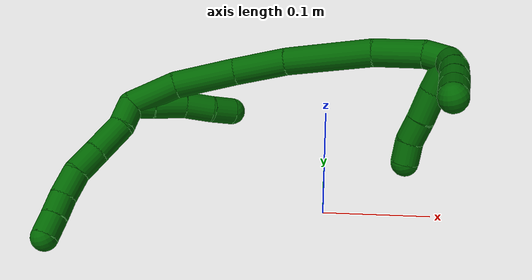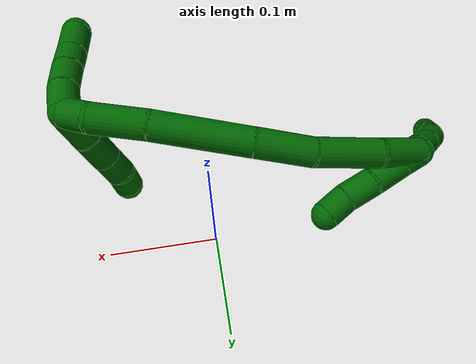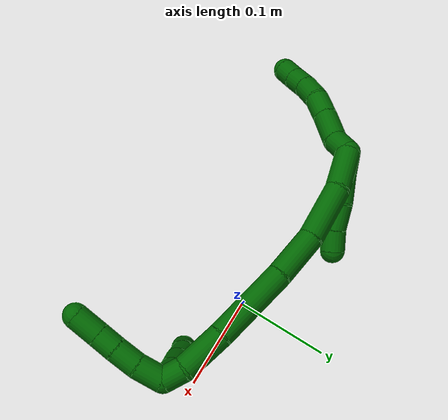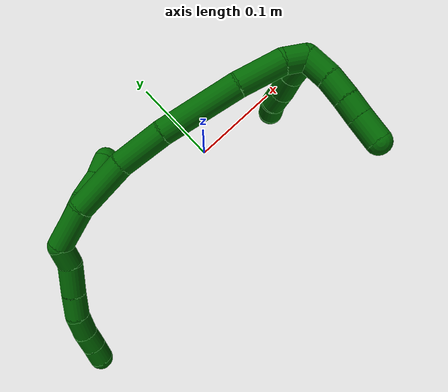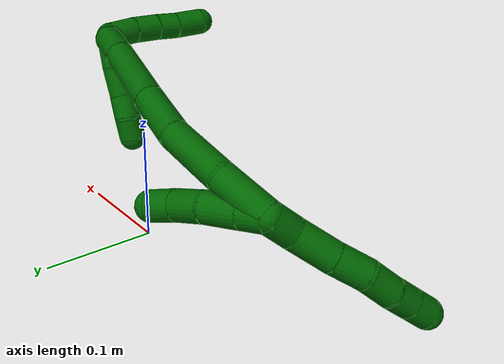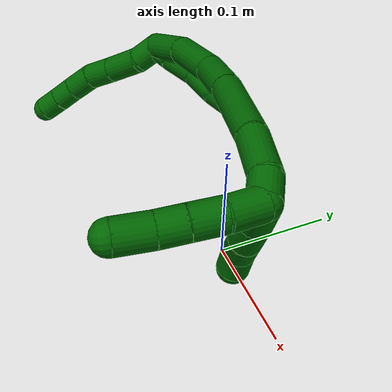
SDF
<sdf version="1.7">
 <world name="default">
  <model name="6">
   <static>0</static>
   <link name="6">
    <collision name="collision-cylinder-e_1_2_8">
     <pose>-0.003901 -0.00984 -0.004766 2.02182 -0.342697 -0.538741</pose>
     <geometry><cylinder><radius>0.0125</radius><length>0.023217</length></cylinder></geometry>
     <surface>
      <friction><ode><mu>1.16</mu><mu2>1.16</mu2><slip1>0</slip1><slip2>0</slip2></ode></friction>
      <contact><ode><kp>1e+06</kp><kd>1</kd><max_vel>0</max_vel><min_depth>0.001</min_depth></ode></contact>
     </surface>
    </collision>
    <visual name="visual-cylinder-e_1_2_8">
     <pose>-0.003901 -0.00984 -0.004766 2.02182 -0.342697 -0.538741</pose>
     <geometry><cylinder><radius>0.0125</radius><length>0.023217</length></cylinder></geometry>
     <material><ambient>0 0.392157 0.003922 1</ambient></material>
    </visual>
    <collision name="collision-cylinder-e_2_8_9">
     <pose>-0.018179 -0.032666 -0.013513 1.86833 -0.652395 -0.858238</pose>
     <geometry><cylinder><radius>0.0125</radius><length>0.034187</length></cylinder></geometry>
     <surface>
      <friction><ode><mu>1.16</mu><mu2>1.16</mu2><slip1>0</slip1><slip2>0</slip2></ode></friction>
      <contact><ode><kp>1e+06</kp><kd>1</kd><max_vel>0</max_vel><min_depth>0.001</min_depth></ode></contact>
     </surface>
    </collision>
    <visual name="visual-cylinder-e_2_8_9">
     <pose>-0.018179 -0.032666 -0.013513 1.86833 -0.652395 -0.858238</pose>
     <geometry><cylinder><radius>0.0125</radius><length>0.034187</length></cylinder></geometry>
     <material><ambient>0 0.392157 0.003922 1</ambient></material>
    </visual>
    <collision name="collision-cylinder-e_3_9_10">
     <pose>-0.036121 -0.056291 -0.02004 1.8056 -0.605071 -0.753394</pose>
     <geometry><cylinder><radius>0.0125</radius><length>0.0266</length></cylinder></geometry>
     <surface>
      <friction><ode><mu>1.16</mu><mu2>1.16</mu2><slip1>0</slip1><slip2>0</slip2></ode></friction>
      <contact><ode><kp>1e+06</kp><kd>1</kd><max_vel>0</max_vel><min_depth>0.001</min_depth></ode></contact>
     </surface>
    </collision>
    <visual name="visual-cylinder-e_3_9_10">
     <pose>-0.036121 -0.056291 -0.02004 1.8056 -0.605071 -0.753394</pose>
     <geometry><cylinder><radius>0.0125</radius><length>0.0266</length></cylinder></geometry>
     <material><ambient>0 0.392157 0.003922 1</ambient></material>
    </visual>
    <collision name="collision-cylinder-e_4_10_11">
     <pose>-0.04899 -0.077422 -0.027668 2.02192 -0.426876 -0.665912</pose>
     <geometry><cylinder><radius>0.0125</radius><length>0.025616</length></cylinder></geometry>
     <surface>
      <friction><ode><mu>1.16</mu><mu2>1.16</mu2><slip1>0</slip1><slip2>0</slip2></ode></friction>
      <contact><ode><kp>1e+06</kp><kd>1</kd><max_vel>0</max_vel><min_depth>0.001</min_depth></ode></contact>
     </surface>
    </collision>
    <visual name="visual-cylinder-e_4_10_11">
     <pose>-0.04899 -0.077422 -0.027668 2.02192 -0.426876 -0.665912</pose>
     <geometry><cylinder><radius>0.0125</radius><length>0.025616</length></cylinder></geometry>
     <material><ambient>0 0.392157 0.003922 1</ambient></material>
    </visual>
    <collision name="collision-cylinder-e_5_11_12">
     <pose>-0.057225 -0.096681 -0.036755 1.99927 -0.29538 -0.455013</pose>
     <geometry><cylinder><radius>0.0125</radius><length>0.020147</length></cylinder></geometry>
     <surface>
      <friction><ode><mu>1.16</mu><mu2>1.16</mu2><slip1>0</slip1><slip2>0</slip2></ode></friction>
      <contact><ode><kp>1e+06</kp><kd>1</kd><max_vel>0</max_vel><min_depth>0.001</min_depth></ode></contact>
     </surface>
    </collision>
    <visual name="visual-cylinder-e_5_11_12">
     <pose>-0.057225 -0.096681 -0.036755 1.99927 -0.29538 -0.455013</pose>
     <geometry><cylinder><radius>0.0125</radius><length>0.020147</length></cylinder></geometry>
     <material><ambient>0 0.392157 0.003922 1</ambient></material>
    </visual>
    <collision name="collision-cylinder-e_6_12_6">
     <pose>-0.063398 -0.1142 -0.04466 1.99001 -0.326053 -0.496316</pose>
     <geometry><cylinder><radius>0.0125</radius><length>0.020233</length></cylinder></geometry>
     <surface>
      <friction><ode><mu>1.16</mu><mu2>1.16</mu2><slip1>0</slip1><slip2>0</slip2></ode></friction>
      <contact><ode><kp>1e+06</kp><kd>1</kd><max_vel>0</max_vel><min_depth>0.001</min_depth></ode></contact>
     </surface>
    </collision>
    <visual name="visual-cylinder-e_6_12_6">
     <pose>-0.063398 -0.1142 -0.04466 1.99001 -0.326053 -0.496316</pose>
     <geometry><cylinder><radius>0.0125</radius><length>0.020233</length></cylinder></geometry>
     <material><ambient>0 0.392157 0.003922 1</ambient></material>
    </visual>
    <collision name="collision-cylinder-e_1_2_13">
     <pose>0.008161 0.004155 -0.004655 -2.41279 0.918022 -1.82698</pose>
     <geometry><cylinder><radius>0.0125</radius><length>0.020546</length></cylinder></geometry>
     <surface>
      <friction><ode><mu>1.16</mu><mu2>1.16</mu2><slip1>0</slip1><slip2>0</slip2></ode></friction>
      <contact><ode><kp>1e+06</kp><kd>1</kd><max_vel>0</max_vel><min_depth>0.001</min_depth></ode></contact>
     </surface>
    </collision>
    <visual name="visual-cylinder-e_1_2_13">
     <pose>0.008161 0.004155 -0.004655 -2.41279 0.918022 -1.82698</pose>
     <geometry><cylinder><radius>0.0125</radius><length>0.020546</length></cylinder></geometry>
     <material><ambient>0 0.392157 0.003922 1</ambient></material>
    </visual>
    <collision name="collision-cylinder-e_2_13_14">
     <pose>0.028263 0.015376 -0.015724 -2.30802 0.896558 -1.65348</pose>
     <geometry><cylinder><radius>0.0125</radius><length>0.030572</length></cylinder></geometry>
     <surface>
      <friction><ode><mu>1.16</mu><mu2>1.16</mu2><slip1>0</slip1><slip2>0</slip2></ode></friction>
      <contact><ode><kp>1e+06</kp><kd>1</kd><max_vel>0</max_vel><min_depth>0.001</min_depth></ode></contact>
     </surface>
    </collision>
    <visual name="visual-cylinder-e_2_13_14">
     <pose>0.028263 0.015376 -0.015724 -2.30802 0.896558 -1.65348</pose>
     <geometry><cylinder><radius>0.0125</radius><length>0.030572</length></cylinder></geometry>
     <material><ambient>0 0.392157 0.003922 1</ambient></material>
    </visual>
    <collision name="collision-cylinder-e_3_14_15">
     <pose>0.050648 0.026787 -0.029403 -2.60239 0.889749 -2.091</pose>
     <geometry><cylinder><radius>0.0125</radius><length>0.026887</length></cylinder></geometry>
     <surface>
      <friction><ode><mu>1.16</mu><mu2>1.16</mu2><slip1>0</slip1><slip2>0</slip2></ode></friction>
      <contact><ode><kp>1e+06</kp><kd>1</kd><max_vel>0</max_vel><min_depth>0.001</min_depth></ode></contact>
     </surface>
    </collision>
    <visual name="visual-cylinder-e_3_14_15">
     <pose>0.050648 0.026787 -0.029403 -2.60239 0.889749 -2.091</pose>
     <geometry><cylinder><radius>0.0125</radius><length>0.026887</length></cylinder></geometry>
     <material><ambient>0 0.392157 0.003922 1</ambient></material>
    </visual>
    <collision name="collision-cylinder-e_4_15_5">
     <pose>0.068609 0.036459 -0.042674 -2.41631 0.752427 -1.6111</pose>
     <geometry><cylinder><radius>0.0125</radius><length>0.021995</length></cylinder></geometry>
     <surface>
      <friction><ode><mu>1.16</mu><mu2>1.16</mu2><slip1>0</slip1><slip2>0</slip2></ode></friction>
      <contact><ode><kp>1e+06</kp><kd>1</kd><max_vel>0</max_vel><min_depth>0.001</min_depth></ode></contact>
     </surface>
    </collision>
    <visual name="visual-cylinder-e_4_15_5">
     <pose>0.068609 0.036459 -0.042674 -2.41631 0.752427 -1.6111</pose>
     <geometry><cylinder><radius>0.0125</radius><length>0.021995</length></cylinder></geometry>
     <material><ambient>0 0.392157 0.003922 1</ambient></material>
    </visual>
    <collision name="collision-cylinder-e_1_2_16">
     <pose>0.020952 0.008129 0.001511 -1.38697 1.19493 -1.02944</pose>
     <geometry><cylinder><radius>0.0125</radius><length>0.045048</length></cylinder></geometry>
     <surface>
      <friction><ode><mu>1.16</mu><mu2>1.16</mu2><slip1>0</slip1><slip2>0</slip2></ode></friction>
      <contact><ode><kp>1e+06</kp><kd>1</kd><max_vel>0</max_vel><min_depth>0.001</min_depth></ode></contact>
     </surface>
    </collision>
    <visual name="visual-cylinder-e_1_2_16">
     <pose>0.020952 0.008129 0.001511 -1.38697 1.19493 -1.02944</pose>
     <geometry><cylinder><radius>0.0125</radius><length>0.045048</length></cylinder></geometry>
     <material><ambient>0 0.392157 0.003922 1</ambient></material>
    </visual>
    <collision name="collision-cylinder-e_2_16_17">
     <pose>0.070409 0.020946 0.001471 -1.89046 1.39924 -1.72305</pose>
     <geometry><cylinder><radius>0.0125</radius><length>0.057861</length></cylinder></geometry>
     <surface>
      <friction><ode><mu>1.16</mu><mu2>1.16</mu2><slip1>0</slip1><slip2>0</slip2></ode></friction>
      <contact><ode><kp>1e+06</kp><kd>1</kd><max_vel>0</max_vel><min_depth>0.001</min_depth></ode></contact>
     </surface>
    </collision>
    <visual name="visual-cylinder-e_2_16_17">
     <pose>0.070409 0.020946 0.001471 -1.89046 1.39924 -1.72305</pose>
     <geometry><cylinder><radius>0.0125</radius><length>0.057861</length></cylinder></geometry>
     <material><ambient>0 0.392157 0.003922 1</ambient></material>
    </visual>
    <collision name="collision-cylinder-e_3_17_18">
     <pose>0.123506 0.025384 -3.6e-05 1.39336 1.56041 1.38315</pose>
     <geometry><cylinder><radius>0.0125</radius><length>0.049185</length></cylinder></geometry>
     <surface>
      <friction><ode><mu>1.16</mu><mu2>1.16</mu2><slip1>0</slip1><slip2>0</slip2></ode></friction>
      <contact><ode><kp>1e+06</kp><kd>1</kd><max_vel>0</max_vel><min_depth>0.001</min_depth></ode></contact>
     </surface>
    </collision>
    <visual name="visual-cylinder-e_3_17_18">
     <pose>0.123506 0.025384 -3.6e-05 1.39336 1.56041 1.38315</pose>
     <geometry><cylinder><radius>0.0125</radius><length>0.049185</length></cylinder></geometry>
     <material><ambient>0 0.392157 0.003922 1</ambient></material>
    </visual>
    <collision name="collision-cylinder-e_4_18_19">
     <pose>0.188036 0.021351 -0.002265 2.11219 1.46076 2.01511</pose>
     <geometry><cylinder><radius>0.0125</radius><length>0.080364</length></cylinder></geometry>
     <surface>
      <friction><ode><mu>1.16</mu><mu2>1.16</mu2><slip1>0</slip1><slip2>0</slip2></ode></friction>
      <contact><ode><kp>1e+06</kp><kd>1</kd><max_vel>0</max_vel><min_depth>0.001</min_depth></ode></contact>
     </surface>
    </collision>
    <visual name="visual-cylinder-e_4_18_19">
     <pose>0.188036 0.021351 -0.002265 2.11219 1.46076 2.01511</pose>
     <geometry><cylinder><radius>0.0125</radius><length>0.080364</length></cylinder></geometry>
     <material><ambient>0 0.392157 0.003922 1</ambient></material>
    </visual>
    <collision name="collision-cylinder-e_5_19_20">
     <pose>0.250079 0.013738 -0.008181 2.33095 1.33605 2.14546</pose>
     <geometry><cylinder><radius>0.0125</radius><length>0.045455</length></cylinder></geometry>
     <surface>
      <friction><ode><mu>1.16</mu><mu2>1.16</mu2><slip1>0</slip1><slip2>0</slip2></ode></friction>
      <contact><ode><kp>1e+06</kp><kd>1</kd><max_vel>0</max_vel><min_depth>0.001</min_depth></ode></contact>
     </surface>
    </collision>
    <visual name="visual-cylinder-e_5_19_20">
     <pose>0.250079 0.013738 -0.008181 2.33095 1.33605 2.14546</pose>
     <geometry><cylinder><radius>0.0125</radius><length>0.045455</length></cylinder></geometry>
     <material><ambient>0 0.392157 0.003922 1</ambient></material>
    </visual>
    <collision name="collision-cylinder-e_6_20_1">
     <pose>0.281696 0.005093 -0.014705 2.11019 1.03793 1.57839</pose>
     <geometry><cylinder><radius>0.0125</radius><length>0.022087</length></cylinder></geometry>
     <surface>
      <friction><ode><mu>1.16</mu><mu2>1.16</mu2><slip1>0</slip1><slip2>0</slip2></ode></friction>
      <contact><ode><kp>1e+06</kp><kd>1</kd><max_vel>0</max_vel><min_depth>0.001</min_depth></ode></contact>
     </surface>
    </collision>
    <visual name="visual-cylinder-e_6_20_1">
     <pose>0.281696 0.005093 -0.014705 2.11019 1.03793 1.57839</pose>
     <geometry><cylinder><radius>0.0125</radius><length>0.022087</length></cylinder></geometry>
     <material><ambient>0 0.392157 0.003922 1</ambient></material>
    </visual>
    <collision name="collision-cylinder-e_1_1_21">
     <pose>0.293844 -0.012756 -0.014943 1.37073 0.195592 0.160081</pose>
     <geometry><cylinder><radius>0.0125</radius><length>0.02712</length></cylinder></geometry>
     <surface>
      <friction><ode><mu>1.16</mu><mu2>1.16</mu2><slip1>0</slip1><slip2>0</slip2></ode></friction>
      <contact><ode><kp>1e+06</kp><kd>1</kd><max_vel>0</max_vel><min_depth>0.001</min_depth></ode></contact>
     </surface>
    </collision>
    <visual name="visual-cylinder-e_1_1_21">
     <pose>0.293844 -0.012756 -0.014943 1.37073 0.195592 0.160081</pose>
     <geometry><cylinder><radius>0.0125</radius><length>0.02712</length></cylinder></geometry>
     <material><ambient>0 0.392157 0.003922 1</ambient></material>
    </visual>
    <collision name="collision-cylinder-e_2_21_22">
     <pose>0.296969 -0.037749 -0.009998 1.38058 0.04021 0.033208</pose>
     <geometry><cylinder><radius>0.0125</radius><length>0.024372</length></cylinder></geometry>
     <surface>
      <friction><ode><mu>1.16</mu><mu2>1.16</mu2><slip1>0</slip1><slip2>0</slip2></ode></friction>
      <contact><ode><kp>1e+06</kp><kd>1</kd><max_vel>0</max_vel><min_depth>0.001</min_depth></ode></contact>
     </surface>
    </collision>
    <visual name="visual-cylinder-e_2_21_22">
     <pose>0.296969 -0.037749 -0.009998 1.38058 0.04021 0.033208</pose>
     <geometry><cylinder><radius>0.0125</radius><length>0.024372</length></cylinder></geometry>
     <material><ambient>0 0.392157 0.003922 1</ambient></material>
    </visual>
    <collision name="collision-cylinder-e_3_22_23">
     <pose>0.297446 -0.059992 -0.006056 1.41272 -0.001193 -0.001018</pose>
     <geometry><cylinder><radius>0.0125</radius><length>0.020831</length></cylinder></geometry>
     <surface>
      <friction><ode><mu>1.16</mu><mu2>1.16</mu2><slip1>0</slip1><slip2>0</slip2></ode></friction>
      <contact><ode><kp>1e+06</kp><kd>1</kd><max_vel>0</max_vel><min_depth>0.001</min_depth></ode></contact>
     </surface>
    </collision>
    <visual name="visual-cylinder-e_3_22_23">
     <pose>0.297446 -0.059992 -0.006056 1.41272 -0.001193 -0.001018</pose>
     <geometry><cylinder><radius>0.0125</radius><length>0.020831</length></cylinder></geometry>
     <material><ambient>0 0.392157 0.003922 1</ambient></material>
    </visual>
    <collision name="collision-cylinder-e_4_23_4">
     <pose>0.297707 -0.083729 -0.001179 1.3346 0.019756 0.015565</pose>
     <geometry><cylinder><radius>0.0125</radius><length>0.027676</length></cylinder></geometry>
     <surface>
      <friction><ode><mu>1.16</mu><mu2>1.16</mu2><slip1>0</slip1><slip2>0</slip2></ode></friction>
      <contact><ode><kp>1e+06</kp><kd>1</kd><max_vel>0</max_vel><min_depth>0.001</min_depth></ode></contact>
     </surface>
    </collision>
    <visual name="visual-cylinder-e_4_23_4">
     <pose>0.297707 -0.083729 -0.001179 1.3346 0.019756 0.015565</pose>
     <geometry><cylinder><radius>0.0125</radius><length>0.027676</length></cylinder></geometry>
     <material><ambient>0 0.392157 0.003922 1</ambient></material>
    </visual>
    <collision name="collision-cylinder-e_1_1_24">
     <pose>0.282122 -0.001944 -0.029293 2.95383 -0.651471 -2.59788</pose>
     <geometry><cylinder><radius>0.0125</radius><length>0.02997</length></cylinder></geometry>
     <surface>
      <friction><ode><mu>1.16</mu><mu2>1.16</mu2><slip1>0</slip1><slip2>0</slip2></ode></friction>
      <contact><ode><kp>1e+06</kp><kd>1</kd><max_vel>0</max_vel><min_depth>0.001</min_depth></ode></contact>
     </surface>
    </collision>
    <visual name="visual-cylinder-e_1_1_24">
     <pose>0.282122 -0.001944 -0.029293 2.95383 -0.651471 -2.59788</pose>
     <geometry><cylinder><radius>0.0125</radius><length>0.02997</length></cylinder></geometry>
     <material><ambient>0 0.392157 0.003922 1</ambient></material>
    </visual>
    <collision name="collision-cylinder-e_2_24_25">
     <pose>0.265214 -0.007653 -0.051999 2.8348 -0.595763 -2.20856</pose>
     <geometry><cylinder><radius>0.0125</radius><length>0.027878</length></cylinder></geometry>
     <surface>
      <friction><ode><mu>1.16</mu><mu2>1.16</mu2><slip1>0</slip1><slip2>0</slip2></ode></friction>
      <contact><ode><kp>1e+06</kp><kd>1</kd><max_vel>0</max_vel><min_depth>0.001</min_depth></ode></contact>
     </surface>
    </collision>
    <visual name="visual-cylinder-e_2_24_25">
     <pose>0.265214 -0.007653 -0.051999 2.8348 -0.595763 -2.20856</pose>
     <geometry><cylinder><radius>0.0125</radius><length>0.027878</length></cylinder></geometry>
     <material><ambient>0 0.392157 0.003922 1</ambient></material>
    </visual>
    <collision name="collision-cylinder-e_3_25_26">
     <pose>0.250733 -0.013187 -0.071403 2.90239 -0.65602 -2.46266</pose>
     <geometry><cylinder><radius>0.0125</radius><length>0.021834</length></cylinder></geometry>
     <surface>
      <friction><ode><mu>1.16</mu><mu2>1.16</mu2><slip1>0</slip1><slip2>0</slip2></ode></friction>
      <contact><ode><kp>1e+06</kp><kd>1</kd><max_vel>0</max_vel><min_depth>0.001</min_depth></ode></contact>
     </surface>
    </collision>
    <visual name="visual-cylinder-e_3_25_26">
     <pose>0.250733 -0.013187 -0.071403 2.90239 -0.65602 -2.46266</pose>
     <geometry><cylinder><radius>0.0125</radius><length>0.021834</length></cylinder></geometry>
     <material><ambient>0 0.392157 0.003922 1</ambient></material>
    </visual>
    <collision name="collision-cylinder-e_4_26_3">
     <pose>0.240049 -0.018411 -0.088578 2.7943 -0.407335 -1.73338</pose>
     <geometry><cylinder><radius>0.0125</radius><length>0.020317</length></cylinder></geometry>
     <surface>
      <friction><ode><mu>1.16</mu><mu2>1.16</mu2><slip1>0</slip1><slip2>0</slip2></ode></friction>
      <contact><ode><kp>1e+06</kp><kd>1</kd><max_vel>0</max_vel><min_depth>0.001</min_depth></ode></contact>
     </surface>
    </collision>
    <visual name="visual-cylinder-e_4_26_3">
     <pose>0.240049 -0.018411 -0.088578 2.7943 -0.407335 -1.73338</pose>
     <geometry><cylinder><radius>0.0125</radius><length>0.020317</length></cylinder></geometry>
     <material><ambient>0 0.392157 0.003922 1</ambient></material>
    </visual>
    <collision name="collision-sphere-3">
     <pose>0.236025 -0.021586 -0.097349 0 -0 0</pose>
     <geometry><sphere><radius>0.0125</radius></sphere></geometry>
     <surface>
      <friction><ode><mu>1.16</mu><mu2>1.16</mu2><slip1>0</slip1><slip2>0</slip2></ode></friction>
      <contact><ode><kp>1e+06</kp><kd>1</kd><max_vel>0</max_vel><min_depth>0.001</min_depth></ode></contact>
     </surface>
    </collision>
    <visual name="visual-sphere-3">
     <pose>0.236025 -0.021586 -0.097349 0 -0 0</pose>
     <geometry><sphere><radius>0.0125</radius></sphere></geometry>
     <material><ambient>0 0.392157 0.003922 1</ambient></material>
    </visual>
    <collision name="collision-sphere-26">
     <pose>0.244074 -0.015237 -0.079807 0 -0 0</pose>
     <geometry><sphere><radius>0.0125</radius></sphere></geometry>
     <surface>
      <friction><ode><mu>1.16</mu><mu2>1.16</mu2><slip1>0</slip1><slip2>0</slip2></ode></friction>
      <contact><ode><kp>1e+06</kp><kd>1</kd><max_vel>0</max_vel><min_depth>0.001</min_depth></ode></contact>
     </surface>
    </collision>
    <visual name="visual-sphere-26">
     <pose>0.244074 -0.015237 -0.079807 0 -0 0</pose>
     <geometry><sphere><radius>0.0125</radius></sphere></geometry>
     <material><ambient>0 0.392157 0.003922 1</ambient></material>
    </visual>
    <collision name="collision-sphere-25">
     <pose>0.257392 -0.011137 -0.062998 0 -0 0</pose>
     <geometry><sphere><radius>0.0125</radius></sphere></geometry>
     <surface>
      <friction><ode><mu>1.16</mu><mu2>1.16</mu2><slip1>0</slip1><slip2>0</slip2></ode></friction>
      <contact><ode><kp>1e+06</kp><kd>1</kd><max_vel>0</max_vel><min_depth>0.001</min_depth></ode></contact>
     </surface>
    </collision>
    <visual name="visual-sphere-25">
     <pose>0.257392 -0.011137 -0.062998 0 -0 0</pose>
     <geometry><sphere><radius>0.0125</radius></sphere></geometry>
     <material><ambient>0 0.392157 0.003922 1</ambient></material>
    </visual>
    <collision name="collision-sphere-24">
     <pose>0.273036 -0.004169 -0.041 0 -0 0</pose>
     <geometry><sphere><radius>0.0125</radius></sphere></geometry>
     <surface>
      <friction><ode><mu>1.16</mu><mu2>1.16</mu2><slip1>0</slip1><slip2>0</slip2></ode></friction>
      <contact><ode><kp>1e+06</kp><kd>1</kd><max_vel>0</max_vel><min_depth>0.001</min_depth></ode></contact>
     </surface>
    </collision>
    <visual name="visual-sphere-24">
     <pose>0.273036 -0.004169 -0.041 0 -0 0</pose>
     <geometry><sphere><radius>0.0125</radius></sphere></geometry>
     <material><ambient>0 0.392157 0.003922 1</ambient></material>
    </visual>
    <collision name="collision-sphere-4">
     <pose>0.297981 -0.09718 0.002059 0 -0 0</pose>
     <geometry><sphere><radius>0.0125</radius></sphere></geometry>
     <surface>
      <friction><ode><mu>1.16</mu><mu2>1.16</mu2><slip1>0</slip1><slip2>0</slip2></ode></friction>
      <contact><ode><kp>1e+06</kp><kd>1</kd><max_vel>0</max_vel><min_depth>0.001</min_depth></ode></contact>
     </surface>
    </collision>
    <visual name="visual-sphere-4">
     <pose>0.297981 -0.09718 0.002059 0 -0 0</pose>
     <geometry><sphere><radius>0.0125</radius></sphere></geometry>
     <material><ambient>0 0.392157 0.003922 1</ambient></material>
    </visual>
    <collision name="collision-sphere-23">
     <pose>0.297434 -0.070277 -0.004416 0 -0 0</pose>
     <geometry><sphere><radius>0.0125</radius></sphere></geometry>
     <surface>
      <friction><ode><mu>1.16</mu><mu2>1.16</mu2><slip1>0</slip1><slip2>0</slip2></ode></friction>
      <contact><ode><kp>1e+06</kp><kd>1</kd><max_vel>0</max_vel><min_depth>0.001</min_depth></ode></contact>
     </surface>
    </collision>
    <visual name="visual-sphere-23">
     <pose>0.297434 -0.070277 -0.004416 0 -0 0</pose>
     <geometry><sphere><radius>0.0125</radius></sphere></geometry>
     <material><ambient>0 0.392157 0.003922 1</ambient></material>
    </visual>
    <collision name="collision-sphere-22">
     <pose>0.297459 -0.049706 -0.007696 0 -0 0</pose>
     <geometry><sphere><radius>0.0125</radius></sphere></geometry>
     <surface>
      <friction><ode><mu>1.16</mu><mu2>1.16</mu2><slip1>0</slip1><slip2>0</slip2></ode></friction>
      <contact><ode><kp>1e+06</kp><kd>1</kd><max_vel>0</max_vel><min_depth>0.001</min_depth></ode></contact>
     </surface>
    </collision>
    <visual name="visual-sphere-22">
     <pose>0.297459 -0.049706 -0.007696 0 -0 0</pose>
     <geometry><sphere><radius>0.0125</radius></sphere></geometry>
     <material><ambient>0 0.392157 0.003922 1</ambient></material>
    </visual>
    <collision name="collision-sphere-21">
     <pose>0.296479 -0.025793 -0.0123 0 -0 0</pose>
     <geometry><sphere><radius>0.0125</radius></sphere></geometry>
     <surface>
      <friction><ode><mu>1.16</mu><mu2>1.16</mu2><slip1>0</slip1><slip2>0</slip2></ode></friction>
      <contact><ode><kp>1e+06</kp><kd>1</kd><max_vel>0</max_vel><min_depth>0.001</min_depth></ode></contact>
     </surface>
    </collision>
    <visual name="visual-sphere-21">
     <pose>0.296479 -0.025793 -0.0123 0 -0 0</pose>
     <geometry><sphere><radius>0.0125</radius></sphere></geometry>
     <material><ambient>0 0.392157 0.003922 1</ambient></material>
    </visual>
    <collision name="collision-sphere-1">
     <pose>0.291208 0.00028 -0.017587 0 -0 0</pose>
     <geometry><sphere><radius>0.0125</radius></sphere></geometry>
     <surface>
      <friction><ode><mu>1.16</mu><mu2>1.16</mu2><slip1>0</slip1><slip2>0</slip2></ode></friction>
      <contact><ode><kp>1e+06</kp><kd>1</kd><max_vel>0</max_vel><min_depth>0.001</min_depth></ode></contact>
     </surface>
    </collision>
    <visual name="visual-sphere-1">
     <pose>0.291208 0.00028 -0.017587 0 -0 0</pose>
     <geometry><sphere><radius>0.0125</radius></sphere></geometry>
     <material><ambient>0 0.392157 0.003922 1</ambient></material>
    </visual>
    <collision name="collision-sphere-12">
     <pose>-0.060158 -0.105447 -0.04076 0 -0 0</pose>
     <geometry><sphere><radius>0.0125</radius></sphere></geometry>
     <surface>
      <friction><ode><mu>1.16</mu><mu2>1.16</mu2><slip1>0</slip1><slip2>0</slip2></ode></friction>
      <contact><ode><kp>1e+06</kp><kd>1</kd><max_vel>0</max_vel><min_depth>0.001</min_depth></ode></contact>
     </surface>
    </collision>
    <visual name="visual-sphere-12">
     <pose>-0.060158 -0.105447 -0.04076 0 -0 0</pose>
     <geometry><sphere><radius>0.0125</radius></sphere></geometry>
     <material><ambient>0 0.392157 0.003922 1</ambient></material>
    </visual>
    <collision name="collision-sphere-11">
     <pose>-0.054293 -0.087915 -0.032751 0 -0 0</pose>
     <geometry><sphere><radius>0.0125</radius></sphere></geometry>
     <surface>
      <friction><ode><mu>1.16</mu><mu2>1.16</mu2><slip1>0</slip1><slip2>0</slip2></ode></friction>
      <contact><ode><kp>1e+06</kp><kd>1</kd><max_vel>0</max_vel><min_depth>0.001</min_depth></ode></contact>
     </surface>
    </collision>
    <visual name="visual-sphere-11">
     <pose>-0.054293 -0.087915 -0.032751 0 -0 0</pose>
     <geometry><sphere><radius>0.0125</radius></sphere></geometry>
     <material><ambient>0 0.392157 0.003922 1</ambient></material>
    </visual>
    <collision name="collision-sphere-10">
     <pose>-0.043687 -0.06693 -0.022585 0 -0 0</pose>
     <geometry><sphere><radius>0.0125</radius></sphere></geometry>
     <surface>
      <friction><ode><mu>1.16</mu><mu2>1.16</mu2><slip1>0</slip1><slip2>0</slip2></ode></friction>
      <contact><ode><kp>1e+06</kp><kd>1</kd><max_vel>0</max_vel><min_depth>0.001</min_depth></ode></contact>
     </surface>
    </collision>
    <visual name="visual-sphere-10">
     <pose>-0.043687 -0.06693 -0.022585 0 -0 0</pose>
     <geometry><sphere><radius>0.0125</radius></sphere></geometry>
     <material><ambient>0 0.392157 0.003922 1</ambient></material>
    </visual>
    <collision name="collision-sphere-9">
     <pose>-0.028556 -0.045652 -0.017495 0 -0 0</pose>
     <geometry><sphere><radius>0.0125</radius></sphere></geometry>
     <surface>
      <friction><ode><mu>1.16</mu><mu2>1.16</mu2><slip1>0</slip1><slip2>0</slip2></ode></friction>
      <contact><ode><kp>1e+06</kp><kd>1</kd><max_vel>0</max_vel><min_depth>0.001</min_depth></ode></contact>
     </surface>
    </collision>
    <visual name="visual-sphere-9">
     <pose>-0.028556 -0.045652 -0.017495 0 -0 0</pose>
     <geometry><sphere><radius>0.0125</radius></sphere></geometry>
     <material><ambient>0 0.392157 0.003922 1</ambient></material>
    </visual>
    <collision name="collision-sphere-2">
     <geometry><sphere><radius>0.0125</radius></sphere></geometry>
     <surface>
      <friction><ode><mu>1.16</mu><mu2>1.16</mu2><slip1>0</slip1><slip2>0</slip2></ode></friction>
      <contact><ode><kp>1e+06</kp><kd>1</kd><max_vel>0</max_vel><min_depth>0.001</min_depth></ode></contact>
     </surface>
    </collision>
    <visual name="visual-sphere-2">
     <geometry><sphere><radius>0.0125</radius></sphere></geometry>
     <material><ambient>0 0.392157 0.003922 1</ambient></material>
    </visual>
    <collision name="collision-sphere-19">
     <pose>0.227975 0.017569 -0.004539 0 -0 0</pose>
     <geometry><sphere><radius>0.0125</radius></sphere></geometry>
     <surface>
      <friction><ode><mu>1.16</mu><mu2>1.16</mu2><slip1>0</slip1><slip2>0</slip2></ode></friction>
      <contact><ode><kp>1e+06</kp><kd>1</kd><max_vel>0</max_vel><min_depth>0.001</min_depth></ode></contact>
     </surface>
    </collision>
    <visual name="visual-sphere-19">
     <pose>0.227975 0.017569 -0.004539 0 -0 0</pose>
     <geometry><sphere><radius>0.0125</radius></sphere></geometry>
     <material><ambient>0 0.392157 0.003922 1</ambient></material>
    </visual>
    <collision name="collision-sphere-8">
     <pose>-0.007801 -0.01968 -0.009531 0 -0 0</pose>
     <geometry><sphere><radius>0.0125</radius></sphere></geometry>
     <surface>
      <friction><ode><mu>1.16</mu><mu2>1.16</mu2><slip1>0</slip1><slip2>0</slip2></ode></friction>
      <contact><ode><kp>1e+06</kp><kd>1</kd><max_vel>0</max_vel><min_depth>0.001</min_depth></ode></contact>
     </surface>
    </collision>
    <visual name="visual-sphere-8">
     <pose>-0.007801 -0.01968 -0.009531 0 -0 0</pose>
     <geometry><sphere><radius>0.0125</radius></sphere></geometry>
     <material><ambient>0 0.392157 0.003922 1</ambient></material>
    </visual>
    <collision name="collision-sphere-6">
     <pose>-0.066638 -0.122954 -0.048561 0 -0 0</pose>
     <geometry><sphere><radius>0.0125</radius></sphere></geometry>
     <surface>
      <friction><ode><mu>1.16</mu><mu2>1.16</mu2><slip1>0</slip1><slip2>0</slip2></ode></friction>
      <contact><ode><kp>1e+06</kp><kd>1</kd><max_vel>0</max_vel><min_depth>0.001</min_depth></ode></contact>
     </surface>
    </collision>
    <visual name="visual-sphere-6">
     <pose>-0.066638 -0.122954 -0.048561 0 -0 0</pose>
     <geometry><sphere><radius>0.0125</radius></sphere></geometry>
     <material><ambient>0 0.392157 0.003922 1</ambient></material>
    </visual>
    <collision name="collision-sphere-13">
     <pose>0.016321 0.008311 -0.009309 0 -0 0</pose>
     <geometry><sphere><radius>0.0125</radius></sphere></geometry>
     <surface>
      <friction><ode><mu>1.16</mu><mu2>1.16</mu2><slip1>0</slip1><slip2>0</slip2></ode></friction>
      <contact><ode><kp>1e+06</kp><kd>1</kd><max_vel>0</max_vel><min_depth>0.001</min_depth></ode></contact>
     </surface>
    </collision>
    <visual name="visual-sphere-13">
     <pose>0.016321 0.008311 -0.009309 0 -0 0</pose>
     <geometry><sphere><radius>0.0125</radius></sphere></geometry>
     <material><ambient>0 0.392157 0.003922 1</ambient></material>
    </visual>
    <collision name="collision-sphere-14">
     <pose>0.040204 0.022441 -0.02214 0 -0 0</pose>
     <geometry><sphere><radius>0.0125</radius></sphere></geometry>
     <surface>
      <friction><ode><mu>1.16</mu><mu2>1.16</mu2><slip1>0</slip1><slip2>0</slip2></ode></friction>
      <contact><ode><kp>1e+06</kp><kd>1</kd><max_vel>0</max_vel><min_depth>0.001</min_depth></ode></contact>
     </surface>
    </collision>
    <visual name="visual-sphere-14">
     <pose>0.040204 0.022441 -0.02214 0 -0 0</pose>
     <geometry><sphere><radius>0.0125</radius></sphere></geometry>
     <material><ambient>0 0.392157 0.003922 1</ambient></material>
    </visual>
    <collision name="collision-sphere-15">
     <pose>0.061093 0.031133 -0.036666 0 -0 0</pose>
     <geometry><sphere><radius>0.0125</radius></sphere></geometry>
     <surface>
      <friction><ode><mu>1.16</mu><mu2>1.16</mu2><slip1>0</slip1><slip2>0</slip2></ode></friction>
      <contact><ode><kp>1e+06</kp><kd>1</kd><max_vel>0</max_vel><min_depth>0.001</min_depth></ode></contact>
     </surface>
    </collision>
    <visual name="visual-sphere-15">
     <pose>0.061093 0.031133 -0.036666 0 -0 0</pose>
     <geometry><sphere><radius>0.0125</radius></sphere></geometry>
     <material><ambient>0 0.392157 0.003922 1</ambient></material>
    </visual>
    <collision name="collision-sphere-5">
     <pose>0.076125 0.041785 -0.048682 0 -0 0</pose>
     <geometry><sphere><radius>0.0125</radius></sphere></geometry>
     <surface>
      <friction><ode><mu>1.16</mu><mu2>1.16</mu2><slip1>0</slip1><slip2>0</slip2></ode></friction>
      <contact><ode><kp>1e+06</kp><kd>1</kd><max_vel>0</max_vel><min_depth>0.001</min_depth></ode></contact>
     </surface>
    </collision>
    <visual name="visual-sphere-5">
     <pose>0.076125 0.041785 -0.048682 0 -0 0</pose>
     <geometry><sphere><radius>0.0125</radius></sphere></geometry>
     <material><ambient>0 0.392157 0.003922 1</ambient></material>
    </visual>
    <collision name="collision-sphere-16">
     <pose>0.041903 0.016258 0.003023 0 -0 0</pose>
     <geometry><sphere><radius>0.0125</radius></sphere></geometry>
     <surface>
      <friction><ode><mu>1.16</mu><mu2>1.16</mu2><slip1>0</slip1><slip2>0</slip2></ode></friction>
      <contact><ode><kp>1e+06</kp><kd>1</kd><max_vel>0</max_vel><min_depth>0.001</min_depth></ode></contact>
     </surface>
    </collision>
    <visual name="visual-sphere-16">
     <pose>0.041903 0.016258 0.003023 0 -0 0</pose>
     <geometry><sphere><radius>0.0125</radius></sphere></geometry>
     <material><ambient>0 0.392157 0.003922 1</ambient></material>
    </visual>
    <collision name="collision-sphere-17">
     <pose>0.098915 0.025635 -8.1e-05 0 -0 0</pose>
     <geometry><sphere><radius>0.0125</radius></sphere></geometry>
     <surface>
      <friction><ode><mu>1.16</mu><mu2>1.16</mu2><slip1>0</slip1><slip2>0</slip2></ode></friction>
      <contact><ode><kp>1e+06</kp><kd>1</kd><max_vel>0</max_vel><min_depth>0.001</min_depth></ode></contact>
     </surface>
    </collision>
    <visual name="visual-sphere-17">
     <pose>0.098915 0.025635 -8.1e-05 0 -0 0</pose>
     <geometry><sphere><radius>0.0125</radius></sphere></geometry>
     <material><ambient>0 0.392157 0.003922 1</ambient></material>
    </visual>
    <collision name="collision-sphere-18">
     <pose>0.148097 0.025132 9e-06 0 -0 0</pose>
     <geometry><sphere><radius>0.0125</radius></sphere></geometry>
     <surface>
      <friction><ode><mu>1.16</mu><mu2>1.16</mu2><slip1>0</slip1><slip2>0</slip2></ode></friction>
      <contact><ode><kp>1e+06</kp><kd>1</kd><max_vel>0</max_vel><min_depth>0.001</min_depth></ode></contact>
     </surface>
    </collision>
    <visual name="visual-sphere-18">
     <pose>0.148097 0.025132 9e-06 0 -0 0</pose>
     <geometry><sphere><radius>0.0125</radius></sphere></geometry>
     <material><ambient>0 0.392157 0.003922 1</ambient></material>
    </visual>
    <collision name="collision-sphere-20">
     <pose>0.272184 0.009907 -0.011824 0 -0 0</pose>
     <geometry><sphere><radius>0.0125</radius></sphere></geometry>
     <surface>
      <friction><ode><mu>1.16</mu><mu2>1.16</mu2><slip1>0</slip1><slip2>0</slip2></ode></friction>
      <contact><ode><kp>1e+06</kp><kd>1</kd><max_vel>0</max_vel><min_depth>0.001</min_depth></ode></contact>
     </surface>
    </collision>
    <visual name="visual-sphere-20">
     <pose>0.272184 0.009907 -0.011824 0 -0 0</pose>
     <geometry><sphere><radius>0.0125</radius></sphere></geometry>
     <material><ambient>0 0.392157 0.003922 1</ambient></material>
    </visual>
    <inertial>
     <pose>0.1309 -0.009992 -0.017314 0 -0 0</pose>
     <mass>0.75</mass>
     <inertia><ixx>1.3e-05</ixx><ixy>0</ixy><ixz>0</ixz><iyy>7.7e-05</iyy><iyz>0</iyz><izz>-8.6e-05</izz></inertia>
    </inertial>
   </link>
   <pose>-0.180352 0.01043 0.099614 0.200468 -0.267767 -0.141445</pose>
  </model>
 </world>
</sdf>
